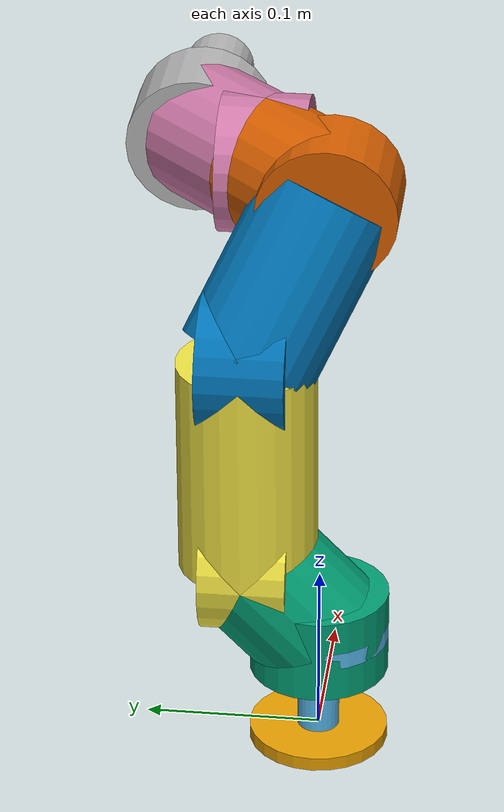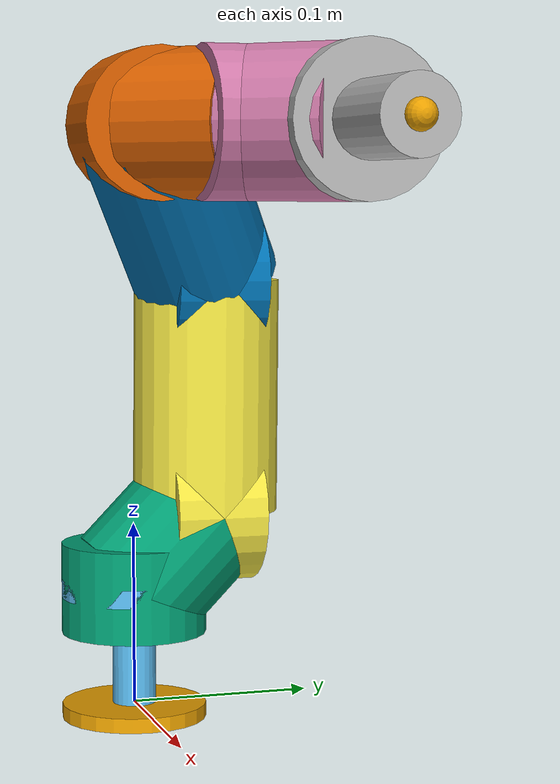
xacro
<?xml version="1.0"?>
<robot xmlns:xacro="http://www.ros.org/wiki/xacro">
  <link name="base_link">
    <visual>
      <origin xyz="0 0 -0.004" rpy="0 0 0"/>
      <geometry><cylinder radius="0.04" length="0.008"/></geometry>
      <material name="base_plate"/>
    </visual>
    <collision>
      <origin xyz="0 0 -0.004" rpy="0 0 0"/>
      <geometry>
        <box size="0.05 0.05 0.008" />
      </geometry>
    </collision>
  </link>

  <link name="link0">
    <inertial>
      <mass value="0.10"/>
      <origin xyz="0 0 0.0325" rpy="0 0 0"/>
      <inertia ixx="1e-4" ixy="0" ixz="0" iyy="1e-4" iyz="0" izz="5e-5"/>
    </inertial>
    <!-- Column cylinder -->
    <visual>
      <origin xyz="0 0 0.0325" rpy="0 0 0"/>
      <geometry><cylinder radius="0.012" length="0.065"/></geometry>
      <material name="teal"/>
    </visual>
    <!-- Joint0 disk (top of column) -->
    <visual>
      <origin xyz="0 0 0.065" rpy="0 0 0"/>
      <geometry><cylinder radius="0.04" length="0.010"/></geometry>
      <material name="joint_disk"/>
    </visual>
    <collision>
      <origin xyz="0 0 0.035" rpy="0 0 0"/>
      <geometry>
        <box size="0.036 0.036 0.07" />
      </geometry>
    </collision>
  </link>

  <link name="link1">
    <inertial>
      <origin xyz="0 0.0205 0.021" rpy="0 0 0"/>
      <mass value="0.3"/>
      <inertia ixx="1e-4" ixy="0" ixz="0" iyy="1e-4" iyz="0" izz="1e-4"/>
    </inertial>
    <visual>
      <origin xyz="0 0 0" rpy="0 0 0"/>
      <geometry><cylinder radius="0.04" length="0.05"/></geometry>
      <material name="body"/>
    </visual>
    <visual>
      <origin xyz="0 0.0205 0.021" rpy="-0.773351 0 0"/>
      <geometry><cylinder radius="0.04" length="0.058694"/></geometry>
      <material name="body"/>
    </visual>
    <collision>
      <origin xyz="0 0 0" rpy="0 0 0"/>
      <geometry><cylinder radius="0.04" length="0.05"/></geometry>
    </collision>
    <collision>
      <origin xyz="0 0.0205 0.021" rpy="-0.773351 0 0"/>
      <geometry><cylinder radius="0.04" length="0.058694"/></geometry>
    </collision>
  </link>

  <link name="link2">
    <inertial>
      <origin xyz="0 -0.064 0.0005" rpy="0 0 0"/>
      <mass value="0.3"/>
      <inertia ixx="1e-4" ixy="0" ixz="0" iyy="1e-4" iyz="0" izz="1e-4"/>
    </inertial>
    <visual>
      <origin xyz="0 0 0" rpy="0 0 0"/>
      <geometry><cylinder radius="0.04" length="0.05"/></geometry>
      <material name="body"/>
    </visual>
    <visual>
      <origin xyz="0 -0.064 0.0005" rpy="1.562984 0 0"/>
      <geometry><cylinder radius="0.04" length="0.128004"/></geometry>
      <material name="body"/>
    </visual>
    <collision>
      <origin xyz="0 0 0" rpy="0 0 0"/>
      <geometry><cylinder radius="0.04" length="0.05"/></geometry>
    </collision>
    <collision>
      <origin xyz="0 -0.064 0.0005" rpy="1.562984 0 0"/>
      <geometry><cylinder radius="0.04" length="0.128004"/></geometry>
    </collision>
  </link>

  <link name="link3">
    <inertial>
      <origin xyz="0.0205 0.0415 0.021" rpy="0 0 0"/>
      <mass value="0.3"/>
      <inertia ixx="1e-4" ixy="0" ixz="0" iyy="1e-4" iyz="0" izz="1e-4"/>
    </inertial>
    <visual>
      <origin xyz="0 0 0" rpy="0 0 0"/>
      <geometry><cylinder radius="0.04" length="0.05"/></geometry>
      <material name="body"/>
    </visual>
    <visual>
      <origin xyz="0.0205 0.0415 0.021" rpy="-1.102341 0.415142 -0.257492"/>
      <geometry><cylinder radius="0.04" length="0.101656"/></geometry>
      <material name="body"/>
    </visual>
    <collision>
      <origin xyz="0 0 0" rpy="0 0 0"/>
      <geometry><cylinder radius="0.04" length="0.05"/></geometry>
    </collision>
    <collision>
      <origin xyz="0.0205 0.0415 0.021" rpy="-1.102341 0.415142 -0.257492"/>
      <geometry><cylinder radius="0.04" length="0.101656"/></geometry>
    </collision>
  </link>

  <link name="link4">
    <inertial>
      <origin xyz="0 0.0205 0.021" rpy="0 0 0"/>
      <mass value="0.3"/>
      <inertia ixx="1e-4" ixy="0" ixz="0" iyy="1e-4" iyz="0" izz="1e-4"/>
    </inertial>
    <visual>
      <origin xyz="0 0 0" rpy="0 0 0"/>
      <geometry><cylinder radius="0.04" length="0.05"/></geometry>
      <material name="body"/>
    </visual>
    <visual>
      <origin xyz="0 0.0205 0.021" rpy="-0.773351 0 0"/>
      <geometry><cylinder radius="0.04" length="0.058694"/></geometry>
      <material name="body"/>
    </visual>
    <collision>
      <origin xyz="0 0 0" rpy="0 0 0"/>
      <geometry><cylinder radius="0.04" length="0.05"/></geometry>
    </collision>
    <collision>
      <origin xyz="0 0.0205 0.021" rpy="-0.773351 0 0"/>
      <geometry><cylinder radius="0.04" length="0.058694"/></geometry>
    </collision>
  </link>

  <link name="link5">
    <inertial>
      <origin xyz="0 -0.0205 0.021" rpy="0 0 0"/>
      <mass value="0.3"/>
      <inertia ixx="1e-4" ixy="0" ixz="0" iyy="1e-4" iyz="0" izz="1e-4"/>
    </inertial>
    <visual>
      <origin xyz="0 0 0" rpy="0 0 0"/>
      <geometry><cylinder radius="0.04" length="0.05"/></geometry>
      <material name="body"/>
    </visual>
    <visual>
      <origin xyz="0 -0.0205 0.021" rpy="0.773351 0 0"/>
      <geometry><cylinder radius="0.04" length="0.058694"/></geometry>
      <material name="body"/>
    </visual>
    <collision>
      <origin xyz="0 0 0" rpy="0 0 0"/>
      <geometry><cylinder radius="0.04" length="0.05"/></geometry>
    </collision>
    <collision>
      <origin xyz="0 -0.0205 0.021" rpy="0.773351 0 0"/>
      <geometry><cylinder radius="0.04" length="0.058694"/></geometry>
    </collision>
  </link>

  <link name="link6">
    <inertial>
      <origin xyz="0 0 0.045" rpy="0 0 0"/>
      <mass value="0.3"/>
      <inertia ixx="1e-4" ixy="0" ixz="0" iyy="1e-4" iyz="0" izz="1e-4"/>
    </inertial>
    <visual>
      <origin xyz="0 0 0" rpy="0 0 0"/>
      <geometry><cylinder radius="0.04" length="0.05"/></geometry>
      <material name="body"/>
    </visual>
    <visual>
      <origin xyz="0 0 0.045" rpy="0 0 0"/>
      <geometry><cylinder radius="0.02" length="0.09"/></geometry>
      <material name="body"/>
    </visual>
    <collision>
      <origin xyz="0 0 0" rpy="0 0 0"/>
      <geometry><cylinder radius="0.04" length="0.05"/></geometry>
    </collision>
    <collision>
      <origin xyz="0 0 0.045" rpy="0 0 0"/>
      <geometry><cylinder radius="0.02" length="0.09"/></geometry>
    </collision>
  </link>

  <link name="tool0">
    <visual>
      <origin xyz="0 0 0" rpy="0 0 0"/>
      <geometry><sphere radius="0.008"/></geometry>
      <material name="ee_ball"/>
    </visual>
    <collision>
      <origin xyz="0 0 0" rpy="0 0 0"/>
      <geometry><sphere radius="0.008"/></geometry>
    </collision>
  </link>

  <joint name="base_to_link0" type="fixed">
    <parent link="base_link"/>
    <child link="link0"/>
    <origin xyz="0 0 0" rpy="0 0 0"/>
  </joint>

  <joint name="joint0" type="revolute">
    <parent link="link0"/>
    <child link="link1"/>
    <origin xyz="0 0 0.065" rpy="0 0 0"/>
    <axis xyz="0 0 1"/>
    <limit lower="-1.57" upper="1.57" effort="10" velocity="3.0"/>
    <dynamics damping="0.05" friction="0.01"/>
  </joint>

  <joint name="joint1" type="revolute">
    <parent link="link1"/>
    <child link="link2"/>
    <origin xyz="0 0.041 0.042" rpy="-1.570796 0 0"/>
    <axis xyz="0 0 1"/>
    <limit lower="-1.57" upper="1.57" effort="10" velocity="3.0"/>
    <dynamics damping="0.05" friction="0.01"/>
  </joint>

  <joint name="joint2" type="revolute">
    <parent link="link2"/>
    <child link="link3"/>
    <origin xyz="0 -0.128 0.001" rpy="3.141593 0 0"/>
    <axis xyz="0 0 1"/>
    <limit lower="-1.57" upper="1.57" effort="10" velocity="3.0"/>
    <dynamics damping="0.05" friction="0.01"/>
  </joint>

  <joint name="joint3" type="revolute">
    <parent link="link3"/>
    <child link="link4"/>
    <origin xyz="0.041 0.083 0.042" rpy="-1.570796 0 -1.570796"/>
    <axis xyz="0 0 1"/>
    <limit lower="-1.57" upper="1.57" effort="10" velocity="3.0"/>
    <dynamics damping="0.05" friction="0.01"/>
  </joint>

  <joint name="joint4" type="revolute">
    <parent link="link4"/>
    <child link="link5"/>
    <origin xyz="0 0.041 0.042" rpy="-1.570796 0 0"/>
    <axis xyz="0 0 1"/>
    <limit lower="-1.57" upper="1.57" effort="10" velocity="3.0"/>
    <dynamics damping="0.05" friction="0.01"/>
  </joint>

  <joint name="joint5" type="revolute">
    <parent link="link5"/>
    <child link="link6"/>
    <origin xyz="0 -0.041 0.042" rpy="1.570796 0 0"/>
    <axis xyz="0 0 1"/>
    <limit lower="-1.57" upper="1.57" effort="10" velocity="3.0"/>
    <dynamics damping="0.05" friction="0.01"/>
  </joint>

  <joint name="joint6_ee" type="fixed">
    <parent link="link6"/>
    <child link="tool0"/>
    <origin xyz="0 0 0.09" rpy="0 0 3.141593"/>
  </joint>
</robot>
